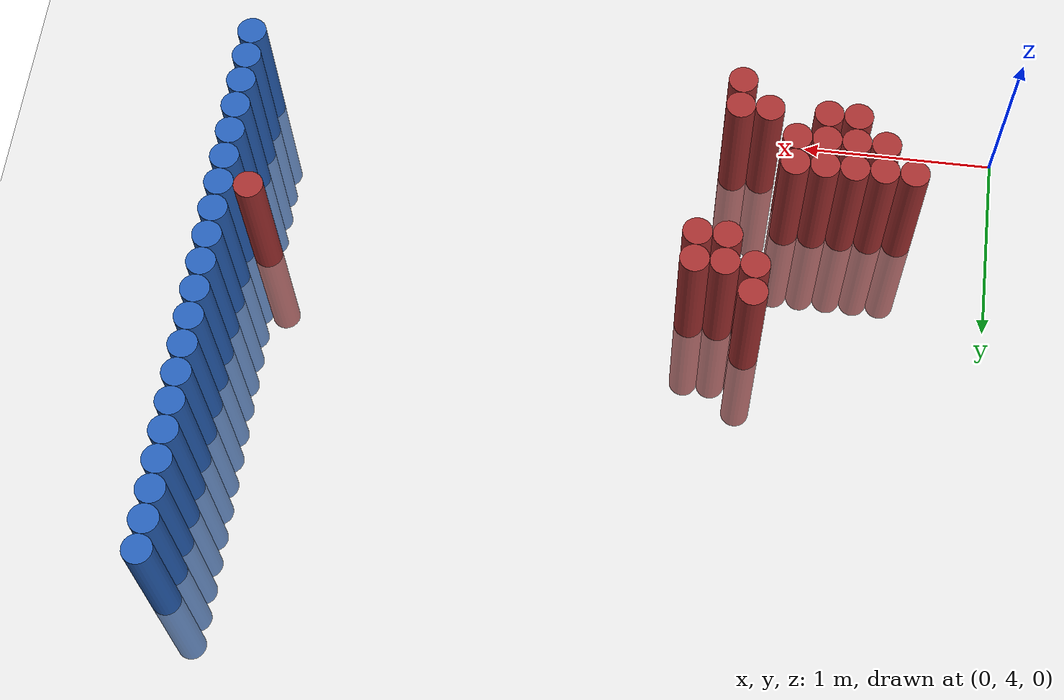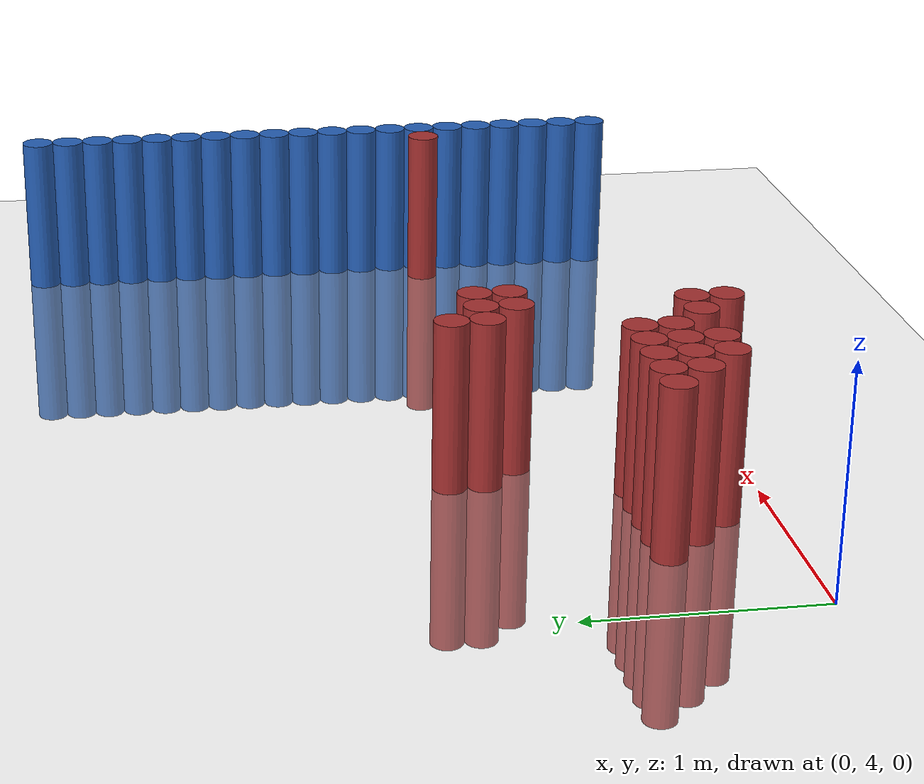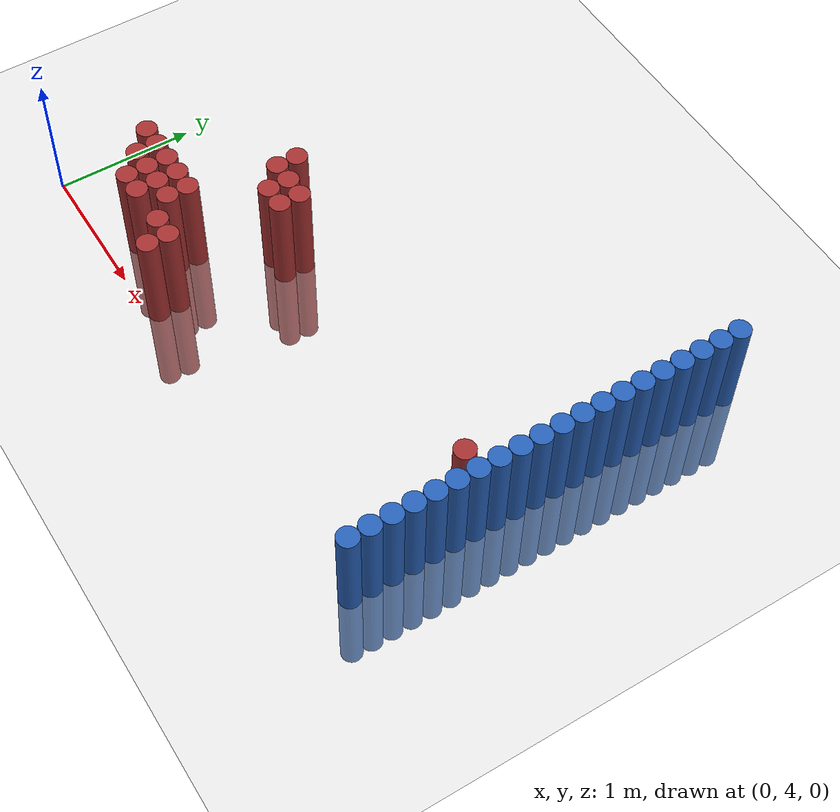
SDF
<sdf version="1.6">
 <world name="default">
  <model name="ground_plane">
   <static>1</static>
   <link name="link">
    <collision name="collision">
     <geometry><plane><normal>0 0 1</normal><size>100 100</size></plane></geometry>
     <surface><friction><ode><mu>100</mu><mu2>50</mu2></ode></friction></surface>
    </collision>
    <visual name="visual">
     <cast_shadows>0</cast_shadows>
     <geometry><plane><normal>0 0 1</normal><size>100 100</size></plane></geometry>
     <material>
      <script><uri>file://media/materials/scripts/gazebo.material</uri><name>Gazebo/Grey</name></script>
     </material>
    </visual>
   </link>
  </model>
  <model name="unit_cylinder_168">
   <static>1</static>
   <pose>3.925000 4.075000 0.000000 0.000000 0.000000 0.000000</pose>
   <link name="link">
    <inertial>
     <mass>1</mass>
     <inertia><ixx>0.145833</ixx><ixy>0</ixy><ixz>0</ixz><iyy>0.145833</iyy><iyz>0</iyz><izz>0.125</izz></inertia>
    </inertial>
    <collision name="collision">
     <geometry><cylinder><radius>0.075000</radius><length>1.5</length></cylinder></geometry>
    </collision>
    <visual name="visual">
     <geometry><cylinder><radius>0.075000</radius><length>1.5</length></cylinder></geometry>
     <material>
      <ambient>0.152000 0.379000 0.720000 1</ambient>
      <diffuse>0.152000 0.379000 0.720000 1</diffuse>
     </material>
     <material>
      <script><name>Gazebo/Grey</name><uri>file://media/materials/scripts/gazebo.material</uri></script>
     </material>
    </visual>
   </link>
  </model>
  <model name="unit_cylinder_170">
   <static>1</static>
   <pose>3.925000 4.225000 0.000000 0.000000 0.000000 0.000000</pose>
   <link name="link">
    <inertial>
     <mass>1</mass>
     <inertia><ixx>0.145833</ixx><ixy>0</ixy><ixz>0</ixz><iyy>0.145833</iyy><iyz>0</iyz><izz>0.125</izz></inertia>
    </inertial>
    <collision name="collision">
     <geometry><cylinder><radius>0.075000</radius><length>1.5</length></cylinder></geometry>
    </collision>
    <visual name="visual">
     <geometry><cylinder><radius>0.075000</radius><length>1.5</length></cylinder></geometry>
     <material>
      <ambient>0.152000 0.379000 0.720000 1</ambient>
      <diffuse>0.152000 0.379000 0.720000 1</diffuse>
     </material>
     <material>
      <script><name>Gazebo/Grey</name><uri>file://media/materials/scripts/gazebo.material</uri></script>
     </material>
    </visual>
   </link>
  </model>
  <model name="unit_cylinder_172">
   <static>1</static>
   <pose>3.925000 4.375000 0.000000 0.000000 0.000000 0.000000</pose>
   <link name="link">
    <inertial>
     <mass>1</mass>
     <inertia><ixx>0.145833</ixx><ixy>0</ixy><ixz>0</ixz><iyy>0.145833</iyy><iyz>0</iyz><izz>0.125</izz></inertia>
    </inertial>
    <collision name="collision">
     <geometry><cylinder><radius>0.075000</radius><length>1.5</length></cylinder></geometry>
    </collision>
    <visual name="visual">
     <geometry><cylinder><radius>0.075000</radius><length>1.5</length></cylinder></geometry>
     <material>
      <ambient>0.152000 0.379000 0.720000 1</ambient>
      <diffuse>0.152000 0.379000 0.720000 1</diffuse>
     </material>
     <material>
      <script><name>Gazebo/Grey</name><uri>file://media/materials/scripts/gazebo.material</uri></script>
     </material>
    </visual>
   </link>
  </model>
  <model name="unit_cylinder_174">
   <static>1</static>
   <pose>3.925000 4.525000 0.000000 0.000000 0.000000 0.000000</pose>
   <link name="link">
    <inertial>
     <mass>1</mass>
     <inertia><ixx>0.145833</ixx><ixy>0</ixy><ixz>0</ixz><iyy>0.145833</iyy><iyz>0</iyz><izz>0.125</izz></inertia>
    </inertial>
    <collision name="collision">
     <geometry><cylinder><radius>0.075000</radius><length>1.5</length></cylinder></geometry>
    </collision>
    <visual name="visual">
     <geometry><cylinder><radius>0.075000</radius><length>1.5</length></cylinder></geometry>
     <material>
      <ambient>0.152000 0.379000 0.720000 1</ambient>
      <diffuse>0.152000 0.379000 0.720000 1</diffuse>
     </material>
     <material>
      <script><name>Gazebo/Grey</name><uri>file://media/materials/scripts/gazebo.material</uri></script>
     </material>
    </visual>
   </link>
  </model>
  <model name="unit_cylinder_176">
   <static>1</static>
   <pose>3.925000 4.675000 0.000000 0.000000 0.000000 0.000000</pose>
   <link name="link">
    <inertial>
     <mass>1</mass>
     <inertia><ixx>0.145833</ixx><ixy>0</ixy><ixz>0</ixz><iyy>0.145833</iyy><iyz>0</iyz><izz>0.125</izz></inertia>
    </inertial>
    <collision name="collision">
     <geometry><cylinder><radius>0.075000</radius><length>1.5</length></cylinder></geometry>
    </collision>
    <visual name="visual">
     <geometry><cylinder><radius>0.075000</radius><length>1.5</length></cylinder></geometry>
     <material>
      <ambient>0.152000 0.379000 0.720000 1</ambient>
      <diffuse>0.152000 0.379000 0.720000 1</diffuse>
     </material>
     <material>
      <script><name>Gazebo/Grey</name><uri>file://media/materials/scripts/gazebo.material</uri></script>
     </material>
    </visual>
   </link>
  </model>
  <model name="unit_cylinder_178">
   <static>1</static>
   <pose>3.925000 4.825000 0.000000 0.000000 0.000000 0.000000</pose>
   <link name="link">
    <inertial>
     <mass>1</mass>
     <inertia><ixx>0.145833</ixx><ixy>0</ixy><ixz>0</ixz><iyy>0.145833</iyy><iyz>0</iyz><izz>0.125</izz></inertia>
    </inertial>
    <collision name="collision">
     <geometry><cylinder><radius>0.075000</radius><length>1.5</length></cylinder></geometry>
    </collision>
    <visual name="visual">
     <geometry><cylinder><radius>0.075000</radius><length>1.5</length></cylinder></geometry>
     <material>
      <ambient>0.152000 0.379000 0.720000 1</ambient>
      <diffuse>0.152000 0.379000 0.720000 1</diffuse>
     </material>
     <material>
      <script><name>Gazebo/Grey</name><uri>file://media/materials/scripts/gazebo.material</uri></script>
     </material>
    </visual>
   </link>
  </model>
  <model name="unit_cylinder_180">
   <static>1</static>
   <pose>3.925000 4.975000 0.000000 0.000000 0.000000 0.000000</pose>
   <link name="link">
    <inertial>
     <mass>1</mass>
     <inertia><ixx>0.145833</ixx><ixy>0</ixy><ixz>0</ixz><iyy>0.145833</iyy><iyz>0</iyz><izz>0.125</izz></inertia>
    </inertial>
    <collision name="collision">
     <geometry><cylinder><radius>0.075000</radius><length>1.5</length></cylinder></geometry>
    </collision>
    <visual name="visual">
     <geometry><cylinder><radius>0.075000</radius><length>1.5</length></cylinder></geometry>
     <material>
      <ambient>0.152000 0.379000 0.720000 1</ambient>
      <diffuse>0.152000 0.379000 0.720000 1</diffuse>
     </material>
     <material>
      <script><name>Gazebo/Grey</name><uri>file://media/materials/scripts/gazebo.material</uri></script>
     </material>
    </visual>
   </link>
  </model>
  <model name="unit_cylinder_182">
   <static>1</static>
   <pose>3.925000 5.125000 0.000000 0.000000 0.000000 0.000000</pose>
   <link name="link">
    <inertial>
     <mass>1</mass>
     <inertia><ixx>0.145833</ixx><ixy>0</ixy><ixz>0</ixz><iyy>0.145833</iyy><iyz>0</iyz><izz>0.125</izz></inertia>
    </inertial>
    <collision name="collision">
     <geometry><cylinder><radius>0.075000</radius><length>1.5</length></cylinder></geometry>
    </collision>
    <visual name="visual">
     <geometry><cylinder><radius>0.075000</radius><length>1.5</length></cylinder></geometry>
     <material>
      <ambient>0.152000 0.379000 0.720000 1</ambient>
      <diffuse>0.152000 0.379000 0.720000 1</diffuse>
     </material>
     <material>
      <script><name>Gazebo/Grey</name><uri>file://media/materials/scripts/gazebo.material</uri></script>
     </material>
    </visual>
   </link>
  </model>
  <model name="unit_cylinder_184">
   <static>1</static>
   <pose>3.925000 5.275000 0.000000 0.000000 0.000000 0.000000</pose>
   <link name="link">
    <inertial>
     <mass>1</mass>
     <inertia><ixx>0.145833</ixx><ixy>0</ixy><ixz>0</ixz><iyy>0.145833</iyy><iyz>0</iyz><izz>0.125</izz></inertia>
    </inertial>
    <collision name="collision">
     <geometry><cylinder><radius>0.075000</radius><length>1.5</length></cylinder></geometry>
    </collision>
    <visual name="visual">
     <geometry><cylinder><radius>0.075000</radius><length>1.5</length></cylinder></geometry>
     <material>
      <ambient>0.152000 0.379000 0.720000 1</ambient>
      <diffuse>0.152000 0.379000 0.720000 1</diffuse>
     </material>
     <material>
      <script><name>Gazebo/Grey</name><uri>file://media/materials/scripts/gazebo.material</uri></script>
     </material>
    </visual>
   </link>
  </model>
  <model name="unit_cylinder_186">
   <static>1</static>
   <pose>3.925000 5.425000 0.000000 0.000000 0.000000 0.000000</pose>
   <link name="link">
    <inertial>
     <mass>1</mass>
     <inertia><ixx>0.145833</ixx><ixy>0</ixy><ixz>0</ixz><iyy>0.145833</iyy><iyz>0</iyz><izz>0.125</izz></inertia>
    </inertial>
    <collision name="collision">
     <geometry><cylinder><radius>0.075000</radius><length>1.5</length></cylinder></geometry>
    </collision>
    <visual name="visual">
     <geometry><cylinder><radius>0.075000</radius><length>1.5</length></cylinder></geometry>
     <material>
      <ambient>0.152000 0.379000 0.720000 1</ambient>
      <diffuse>0.152000 0.379000 0.720000 1</diffuse>
     </material>
     <material>
      <script><name>Gazebo/Grey</name><uri>file://media/materials/scripts/gazebo.material</uri></script>
     </material>
    </visual>
   </link>
  </model>
  <model name="unit_cylinder_188">
   <static>1</static>
   <pose>3.925000 5.575000 0.000000 0.000000 0.000000 0.000000</pose>
   <link name="link">
    <inertial>
     <mass>1</mass>
     <inertia><ixx>0.145833</ixx><ixy>0</ixy><ixz>0</ixz><iyy>0.145833</iyy><iyz>0</iyz><izz>0.125</izz></inertia>
    </inertial>
    <collision name="collision">
     <geometry><cylinder><radius>0.075000</radius><length>1.5</length></cylinder></geometry>
    </collision>
    <visual name="visual">
     <geometry><cylinder><radius>0.075000</radius><length>1.5</length></cylinder></geometry>
     <material>
      <ambient>0.152000 0.379000 0.720000 1</ambient>
      <diffuse>0.152000 0.379000 0.720000 1</diffuse>
     </material>
     <material>
      <script><name>Gazebo/Grey</name><uri>file://media/materials/scripts/gazebo.material</uri></script>
     </material>
    </visual>
   </link>
  </model>
  <model name="unit_cylinder_190">
   <static>1</static>
   <pose>3.925000 5.725000 0.000000 0.000000 0.000000 0.000000</pose>
   <link name="link">
    <inertial>
     <mass>1</mass>
     <inertia><ixx>0.145833</ixx><ixy>0</ixy><ixz>0</ixz><iyy>0.145833</iyy><iyz>0</iyz><izz>0.125</izz></inertia>
    </inertial>
    <collision name="collision">
     <geometry><cylinder><radius>0.075000</radius><length>1.5</length></cylinder></geometry>
    </collision>
    <visual name="visual">
     <geometry><cylinder><radius>0.075000</radius><length>1.5</length></cylinder></geometry>
     <material>
      <ambient>0.152000 0.379000 0.720000 1</ambient>
      <diffuse>0.152000 0.379000 0.720000 1</diffuse>
     </material>
     <material>
      <script><name>Gazebo/Grey</name><uri>file://media/materials/scripts/gazebo.material</uri></script>
     </material>
    </visual>
   </link>
  </model>
  <model name="unit_cylinder_192">
   <static>1</static>
   <pose>3.925000 5.875000 0.000000 0.000000 0.000000 0.000000</pose>
   <link name="link">
    <inertial>
     <mass>1</mass>
     <inertia><ixx>0.145833</ixx><ixy>0</ixy><ixz>0</ixz><iyy>0.145833</iyy><iyz>0</iyz><izz>0.125</izz></inertia>
    </inertial>
    <collision name="collision">
     <geometry><cylinder><radius>0.075000</radius><length>1.5</length></cylinder></geometry>
    </collision>
    <visual name="visual">
     <geometry><cylinder><radius>0.075000</radius><length>1.5</length></cylinder></geometry>
     <material>
      <ambient>0.152000 0.379000 0.720000 1</ambient>
      <diffuse>0.152000 0.379000 0.720000 1</diffuse>
     </material>
     <material>
      <script><name>Gazebo/Grey</name><uri>file://media/materials/scripts/gazebo.material</uri></script>
     </material>
    </visual>
   </link>
  </model>
  <model name="unit_cylinder_194">
   <static>1</static>
   <pose>3.925000 6.025000 0.000000 0.000000 0.000000 0.000000</pose>
   <link name="link">
    <inertial>
     <mass>1</mass>
     <inertia><ixx>0.145833</ixx><ixy>0</ixy><ixz>0</ixz><iyy>0.145833</iyy><iyz>0</iyz><izz>0.125</izz></inertia>
    </inertial>
    <collision name="collision">
     <geometry><cylinder><radius>0.075000</radius><length>1.5</length></cylinder></geometry>
    </collision>
    <visual name="visual">
     <geometry><cylinder><radius>0.075000</radius><length>1.5</length></cylinder></geometry>
     <material>
      <ambient>0.152000 0.379000 0.720000 1</ambient>
      <diffuse>0.152000 0.379000 0.720000 1</diffuse>
     </material>
     <material>
      <script><name>Gazebo/Grey</name><uri>file://media/materials/scripts/gazebo.material</uri></script>
     </material>
    </visual>
   </link>
  </model>
  <model name="unit_cylinder_196">
   <static>1</static>
   <pose>3.925000 6.175000 0.000000 0.000000 0.000000 0.000000</pose>
   <link name="link">
    <inertial>
     <mass>1</mass>
     <inertia><ixx>0.145833</ixx><ixy>0</ixy><ixz>0</ixz><iyy>0.145833</iyy><iyz>0</iyz><izz>0.125</izz></inertia>
    </inertial>
    <collision name="collision">
     <geometry><cylinder><radius>0.075000</radius><length>1.5</length></cylinder></geometry>
    </collision>
    <visual name="visual">
     <geometry><cylinder><radius>0.075000</radius><length>1.5</length></cylinder></geometry>
     <material>
      <ambient>0.152000 0.379000 0.720000 1</ambient>
      <diffuse>0.152000 0.379000 0.720000 1</diffuse>
     </material>
     <material>
      <script><name>Gazebo/Grey</name><uri>file://media/materials/scripts/gazebo.material</uri></script>
     </material>
    </visual>
   </link>
  </model>
  <model name="unit_cylinder_198">
   <static>1</static>
   <pose>3.925000 6.325000 0.000000 0.000000 0.000000 0.000000</pose>
   <link name="link">
    <inertial>
     <mass>1</mass>
     <inertia><ixx>0.145833</ixx><ixy>0</ixy><ixz>0</ixz><iyy>0.145833</iyy><iyz>0</iyz><izz>0.125</izz></inertia>
    </inertial>
    <collision name="collision">
     <geometry><cylinder><radius>0.075000</radius><length>1.5</length></cylinder></geometry>
    </collision>
    <visual name="visual">
     <geometry><cylinder><radius>0.075000</radius><length>1.5</length></cylinder></geometry>
     <material>
      <ambient>0.152000 0.379000 0.720000 1</ambient>
      <diffuse>0.152000 0.379000 0.720000 1</diffuse>
     </material>
     <material>
      <script><name>Gazebo/Grey</name><uri>file://media/materials/scripts/gazebo.material</uri></script>
     </material>
    </visual>
   </link>
  </model>
  <model name="unit_cylinder_200">
   <static>1</static>
   <pose>3.925000 6.475000 0.000000 0.000000 0.000000 0.000000</pose>
   <link name="link">
    <inertial>
     <mass>1</mass>
     <inertia><ixx>0.145833</ixx><ixy>0</ixy><ixz>0</ixz><iyy>0.145833</iyy><iyz>0</iyz><izz>0.125</izz></inertia>
    </inertial>
    <collision name="collision">
     <geometry><cylinder><radius>0.075000</radius><length>1.5</length></cylinder></geometry>
    </collision>
    <visual name="visual">
     <geometry><cylinder><radius>0.075000</radius><length>1.5</length></cylinder></geometry>
     <material>
      <ambient>0.152000 0.379000 0.720000 1</ambient>
      <diffuse>0.152000 0.379000 0.720000 1</diffuse>
     </material>
     <material>
      <script><name>Gazebo/Grey</name><uri>file://media/materials/scripts/gazebo.material</uri></script>
     </material>
    </visual>
   </link>
  </model>
  <model name="unit_cylinder_202">
   <static>1</static>
   <pose>3.925000 6.625000 0.000000 0.000000 0.000000 0.000000</pose>
   <link name="link">
    <inertial>
     <mass>1</mass>
     <inertia><ixx>0.145833</ixx><ixy>0</ixy><ixz>0</ixz><iyy>0.145833</iyy><iyz>0</iyz><izz>0.125</izz></inertia>
    </inertial>
    <collision name="collision">
     <geometry><cylinder><radius>0.075000</radius><length>1.5</length></cylinder></geometry>
    </collision>
    <visual name="visual">
     <geometry><cylinder><radius>0.075000</radius><length>1.5</length></cylinder></geometry>
     <material>
      <ambient>0.152000 0.379000 0.720000 1</ambient>
      <diffuse>0.152000 0.379000 0.720000 1</diffuse>
     </material>
     <material>
      <script><name>Gazebo/Grey</name><uri>file://media/materials/scripts/gazebo.material</uri></script>
     </material>
    </visual>
   </link>
  </model>
  <model name="unit_cylinder_204">
   <static>1</static>
   <pose>3.925000 6.775000 0.000000 0.000000 0.000000 0.000000</pose>
   <link name="link">
    <inertial>
     <mass>1</mass>
     <inertia><ixx>0.145833</ixx><ixy>0</ixy><ixz>0</ixz><iyy>0.145833</iyy><iyz>0</iyz><izz>0.125</izz></inertia>
    </inertial>
    <collision name="collision">
     <geometry><cylinder><radius>0.075000</radius><length>1.5</length></cylinder></geometry>
    </collision>
    <visual name="visual">
     <geometry><cylinder><radius>0.075000</radius><length>1.5</length></cylinder></geometry>
     <material>
      <ambient>0.152000 0.379000 0.720000 1</ambient>
      <diffuse>0.152000 0.379000 0.720000 1</diffuse>
     </material>
     <material>
      <script><name>Gazebo/Grey</name><uri>file://media/materials/scripts/gazebo.material</uri></script>
     </material>
    </visual>
   </link>
  </model>
  <model name="unit_cylinder_206">
   <static>1</static>
   <pose>3.925000 6.925000 0.000000 0.000000 0.000000 0.000000</pose>
   <link name="link">
    <inertial>
     <mass>1</mass>
     <inertia><ixx>0.145833</ixx><ixy>0</ixy><ixz>0</ixz><iyy>0.145833</iyy><iyz>0</iyz><izz>0.125</izz></inertia>
    </inertial>
    <collision name="collision">
     <geometry><cylinder><radius>0.075000</radius><length>1.5</length></cylinder></geometry>
    </collision>
    <visual name="visual">
     <geometry><cylinder><radius>0.075000</radius><length>1.5</length></cylinder></geometry>
     <material>
      <ambient>0.152000 0.379000 0.720000 1</ambient>
      <diffuse>0.152000 0.379000 0.720000 1</diffuse>
     </material>
     <material>
      <script><name>Gazebo/Grey</name><uri>file://media/materials/scripts/gazebo.material</uri></script>
     </material>
    </visual>
   </link>
  </model>
  <model name="unit_cylinder_396">
   <static>1</static>
   <pose>0.475000 4.525000 0.000000 0.000000 0.000000 0.000000</pose>
   <link name="link">
    <inertial>
     <mass>1</mass>
     <inertia><ixx>0.145833</ixx><ixy>0</ixy><ixz>0</ixz><iyy>0.145833</iyy><iyz>0</iyz><izz>0.125</izz></inertia>
    </inertial>
    <collision name="collision">
     <geometry><cylinder><radius>0.075000</radius><length>1.5</length></cylinder></geometry>
    </collision>
    <visual name="visual">
     <geometry><cylinder><radius>0.075000</radius><length>1.5</length></cylinder></geometry>
     <material>
      <ambient>0.648000 0.192000 0.192000 1</ambient>
      <diffuse>0.648000 0.192000 0.192000 1</diffuse>
     </material>
     <material>
      <script><name>Gazebo/Grey</name><uri>file://media/materials/scripts/gazebo.material</uri></script>
     </material>
    </visual>
   </link>
  </model>
  <model name="unit_cylinder_397">
   <static>1</static>
   <pose>0.625000 4.375000 0.000000 0.000000 0.000000 0.000000</pose>
   <link name="link">
    <inertial>
     <mass>1</mass>
     <inertia><ixx>0.145833</ixx><ixy>0</ixy><ixz>0</ixz><iyy>0.145833</iyy><iyz>0</iyz><izz>0.125</izz></inertia>
    </inertial>
    <collision name="collision">
     <geometry><cylinder><radius>0.075000</radius><length>1.5</length></cylinder></geometry>
    </collision>
    <visual name="visual">
     <geometry><cylinder><radius>0.075000</radius><length>1.5</length></cylinder></geometry>
     <material>
      <ambient>0.648000 0.192000 0.192000 1</ambient>
      <diffuse>0.648000 0.192000 0.192000 1</diffuse>
     </material>
     <material>
      <script><name>Gazebo/Grey</name><uri>file://media/materials/scripts/gazebo.material</uri></script>
     </material>
    </visual>
   </link>
  </model>
  <model name="unit_cylinder_398">
   <static>1</static>
   <pose>0.625000 4.525000 0.000000 0.000000 0.000000 0.000000</pose>
   <link name="link">
    <inertial>
     <mass>1</mass>
     <inertia><ixx>0.145833</ixx><ixy>0</ixy><ixz>0</ixz><iyy>0.145833</iyy><iyz>0</iyz><izz>0.125</izz></inertia>
    </inertial>
    <collision name="collision">
     <geometry><cylinder><radius>0.075000</radius><length>1.5</length></cylinder></geometry>
    </collision>
    <visual name="visual">
     <geometry><cylinder><radius>0.075000</radius><length>1.5</length></cylinder></geometry>
     <material>
      <ambient>0.648000 0.192000 0.192000 1</ambient>
      <diffuse>0.648000 0.192000 0.192000 1</diffuse>
     </material>
     <material>
      <script><name>Gazebo/Grey</name><uri>file://media/materials/scripts/gazebo.material</uri></script>
     </material>
    </visual>
   </link>
  </model>
  <model name="unit_cylinder_399">
   <static>1</static>
   <pose>0.775000 4.225000 0.000000 0.000000 0.000000 0.000000</pose>
   <link name="link">
    <inertial>
     <mass>1</mass>
     <inertia><ixx>0.145833</ixx><ixy>0</ixy><ixz>0</ixz><iyy>0.145833</iyy><iyz>0</iyz><izz>0.125</izz></inertia>
    </inertial>
    <collision name="collision">
     <geometry><cylinder><radius>0.075000</radius><length>1.5</length></cylinder></geometry>
    </collision>
    <visual name="visual">
     <geometry><cylinder><radius>0.075000</radius><length>1.5</length></cylinder></geometry>
     <material>
      <ambient>0.648000 0.192000 0.192000 1</ambient>
      <diffuse>0.648000 0.192000 0.192000 1</diffuse>
     </material>
     <material>
      <script><name>Gazebo/Grey</name><uri>file://media/materials/scripts/gazebo.material</uri></script>
     </material>
    </visual>
   </link>
  </model>
  <model name="unit_cylinder_400">
   <static>1</static>
   <pose>0.775000 4.375000 0.000000 0.000000 0.000000 0.000000</pose>
   <link name="link">
    <inertial>
     <mass>1</mass>
     <inertia><ixx>0.145833</ixx><ixy>0</ixy><ixz>0</ixz><iyy>0.145833</iyy><iyz>0</iyz><izz>0.125</izz></inertia>
    </inertial>
    <collision name="collision">
     <geometry><cylinder><radius>0.075000</radius><length>1.5</length></cylinder></geometry>
    </collision>
    <visual name="visual">
     <geometry><cylinder><radius>0.075000</radius><length>1.5</length></cylinder></geometry>
     <material>
      <ambient>0.648000 0.192000 0.192000 1</ambient>
      <diffuse>0.648000 0.192000 0.192000 1</diffuse>
     </material>
     <material>
      <script><name>Gazebo/Grey</name><uri>file://media/materials/scripts/gazebo.material</uri></script>
     </material>
    </visual>
   </link>
  </model>
  <model name="unit_cylinder_401">
   <static>1</static>
   <pose>0.775000 4.525000 0.000000 0.000000 0.000000 0.000000</pose>
   <link name="link">
    <inertial>
     <mass>1</mass>
     <inertia><ixx>0.145833</ixx><ixy>0</ixy><ixz>0</ixz><iyy>0.145833</iyy><iyz>0</iyz><izz>0.125</izz></inertia>
    </inertial>
    <collision name="collision">
     <geometry><cylinder><radius>0.075000</radius><length>1.5</length></cylinder></geometry>
    </collision>
    <visual name="visual">
     <geometry><cylinder><radius>0.075000</radius><length>1.5</length></cylinder></geometry>
     <material>
      <ambient>0.648000 0.192000 0.192000 1</ambient>
      <diffuse>0.648000 0.192000 0.192000 1</diffuse>
     </material>
     <material>
      <script><name>Gazebo/Grey</name><uri>file://media/materials/scripts/gazebo.material</uri></script>
     </material>
    </visual>
   </link>
  </model>
  <model name="unit_cylinder_403">
   <static>1</static>
   <pose>0.925000 4.225000 0.000000 0.000000 0.000000 0.000000</pose>
   <link name="link">
    <inertial>
     <mass>1</mass>
     <inertia><ixx>0.145833</ixx><ixy>0</ixy><ixz>0</ixz><iyy>0.145833</iyy><iyz>0</iyz><izz>0.125</izz></inertia>
    </inertial>
    <collision name="collision">
     <geometry><cylinder><radius>0.075000</radius><length>1.5</length></cylinder></geometry>
    </collision>
    <visual name="visual">
     <geometry><cylinder><radius>0.075000</radius><length>1.5</length></cylinder></geometry>
     <material>
      <ambient>0.648000 0.192000 0.192000 1</ambient>
      <diffuse>0.648000 0.192000 0.192000 1</diffuse>
     </material>
     <material>
      <script><name>Gazebo/Grey</name><uri>file://media/materials/scripts/gazebo.material</uri></script>
     </material>
    </visual>
   </link>
  </model>
  <model name="unit_cylinder_404">
   <static>1</static>
   <pose>0.925000 4.375000 0.000000 0.000000 0.000000 0.000000</pose>
   <link name="link">
    <inertial>
     <mass>1</mass>
     <inertia><ixx>0.145833</ixx><ixy>0</ixy><ixz>0</ixz><iyy>0.145833</iyy><iyz>0</iyz><izz>0.125</izz></inertia>
    </inertial>
    <collision name="collision">
     <geometry><cylinder><radius>0.075000</radius><length>1.5</length></cylinder></geometry>
    </collision>
    <visual name="visual">
     <geometry><cylinder><radius>0.075000</radius><length>1.5</length></cylinder></geometry>
     <material>
      <ambient>0.648000 0.192000 0.192000 1</ambient>
      <diffuse>0.648000 0.192000 0.192000 1</diffuse>
     </material>
     <material>
      <script><name>Gazebo/Grey</name><uri>file://media/materials/scripts/gazebo.material</uri></script>
     </material>
    </visual>
   </link>
  </model>
  <model name="unit_cylinder_405">
   <static>1</static>
   <pose>0.925000 4.525000 0.000000 0.000000 0.000000 0.000000</pose>
   <link name="link">
    <inertial>
     <mass>1</mass>
     <inertia><ixx>0.145833</ixx><ixy>0</ixy><ixz>0</ixz><iyy>0.145833</iyy><iyz>0</iyz><izz>0.125</izz></inertia>
    </inertial>
    <collision name="collision">
     <geometry><cylinder><radius>0.075000</radius><length>1.5</length></cylinder></geometry>
    </collision>
    <visual name="visual">
     <geometry><cylinder><radius>0.075000</radius><length>1.5</length></cylinder></geometry>
     <material>
      <ambient>0.648000 0.192000 0.192000 1</ambient>
      <diffuse>0.648000 0.192000 0.192000 1</diffuse>
     </material>
     <material>
      <script><name>Gazebo/Grey</name><uri>file://media/materials/scripts/gazebo.material</uri></script>
     </material>
    </visual>
   </link>
  </model>
  <model name="unit_cylinder_409">
   <static>1</static>
   <pose>1.075000 4.375000 0.000000 0.000000 0.000000 0.000000</pose>
   <link name="link">
    <inertial>
     <mass>1</mass>
     <inertia><ixx>0.145833</ixx><ixy>0</ixy><ixz>0</ixz><iyy>0.145833</iyy><iyz>0</iyz><izz>0.125</izz></inertia>
    </inertial>
    <collision name="collision">
     <geometry><cylinder><radius>0.075000</radius><length>1.5</length></cylinder></geometry>
    </collision>
    <visual name="visual">
     <geometry><cylinder><radius>0.075000</radius><length>1.5</length></cylinder></geometry>
     <material>
      <ambient>0.648000 0.192000 0.192000 1</ambient>
      <diffuse>0.648000 0.192000 0.192000 1</diffuse>
     </material>
     <material>
      <script><name>Gazebo/Grey</name><uri>file://media/materials/scripts/gazebo.material</uri></script>
     </material>
    </visual>
   </link>
  </model>
  <model name="unit_cylinder_410">
   <static>1</static>
   <pose>1.075000 4.525000 0.000000 0.000000 0.000000 0.000000</pose>
   <link name="link">
    <inertial>
     <mass>1</mass>
     <inertia><ixx>0.145833</ixx><ixy>0</ixy><ixz>0</ixz><iyy>0.145833</iyy><iyz>0</iyz><izz>0.125</izz></inertia>
    </inertial>
    <collision name="collision">
     <geometry><cylinder><radius>0.075000</radius><length>1.5</length></cylinder></geometry>
    </collision>
    <visual name="visual">
     <geometry><cylinder><radius>0.075000</radius><length>1.5</length></cylinder></geometry>
     <material>
      <ambient>0.648000 0.192000 0.192000 1</ambient>
      <diffuse>0.648000 0.192000 0.192000 1</diffuse>
     </material>
     <material>
      <script><name>Gazebo/Grey</name><uri>file://media/materials/scripts/gazebo.material</uri></script>
     </material>
    </visual>
   </link>
  </model>
  <model name="unit_cylinder_413">
   <static>1</static>
   <pose>1.225000 4.225000 0.000000 0.000000 0.000000 0.000000</pose>
   <link name="link">
    <inertial>
     <mass>1</mass>
     <inertia><ixx>0.145833</ixx><ixy>0</ixy><ixz>0</ixz><iyy>0.145833</iyy><iyz>0</iyz><izz>0.125</izz></inertia>
    </inertial>
    <collision name="collision">
     <geometry><cylinder><radius>0.075000</radius><length>1.5</length></cylinder></geometry>
    </collision>
    <visual name="visual">
     <geometry><cylinder><radius>0.075000</radius><length>1.5</length></cylinder></geometry>
     <material>
      <ambient>0.648000 0.192000 0.192000 1</ambient>
      <diffuse>0.648000 0.192000 0.192000 1</diffuse>
     </material>
     <material>
      <script><name>Gazebo/Grey</name><uri>file://media/materials/scripts/gazebo.material</uri></script>
     </material>
    </visual>
   </link>
  </model>
  <model name="unit_cylinder_414">
   <static>1</static>
   <pose>1.225000 5.125000 0.000000 0.000000 0.000000 0.000000</pose>
   <link name="link">
    <inertial>
     <mass>1</mass>
     <inertia><ixx>0.145833</ixx><ixy>0</ixy><ixz>0</ixz><iyy>0.145833</iyy><iyz>0</iyz><izz>0.125</izz></inertia>
    </inertial>
    <collision name="collision">
     <geometry><cylinder><radius>0.075000</radius><length>1.5</length></cylinder></geometry>
    </collision>
    <visual name="visual">
     <geometry><cylinder><radius>0.075000</radius><length>1.5</length></cylinder></geometry>
     <material>
      <ambient>0.648000 0.192000 0.192000 1</ambient>
      <diffuse>0.648000 0.192000 0.192000 1</diffuse>
     </material>
     <material>
      <script><name>Gazebo/Grey</name><uri>file://media/materials/scripts/gazebo.material</uri></script>
     </material>
    </visual>
   </link>
  </model>
  <model name="unit_cylinder_415">
   <static>1</static>
   <pose>1.225000 5.275000 0.000000 0.000000 0.000000 0.000000</pose>
   <link name="link">
    <inertial>
     <mass>1</mass>
     <inertia><ixx>0.145833</ixx><ixy>0</ixy><ixz>0</ixz><iyy>0.145833</iyy><iyz>0</iyz><izz>0.125</izz></inertia>
    </inertial>
    <collision name="collision">
     <geometry><cylinder><radius>0.075000</radius><length>1.5</length></cylinder></geometry>
    </collision>
    <visual name="visual">
     <geometry><cylinder><radius>0.075000</radius><length>1.5</length></cylinder></geometry>
     <material>
      <ambient>0.648000 0.192000 0.192000 1</ambient>
      <diffuse>0.648000 0.192000 0.192000 1</diffuse>
     </material>
     <material>
      <script><name>Gazebo/Grey</name><uri>file://media/materials/scripts/gazebo.material</uri></script>
     </material>
    </visual>
   </link>
  </model>
  <model name="unit_cylinder_418">
   <static>1</static>
   <pose>1.375000 4.075000 0.000000 0.000000 0.000000 0.000000</pose>
   <link name="link">
    <inertial>
     <mass>1</mass>
     <inertia><ixx>0.145833</ixx><ixy>0</ixy><ixz>0</ixz><iyy>0.145833</iyy><iyz>0</iyz><izz>0.125</izz></inertia>
    </inertial>
    <collision name="collision">
     <geometry><cylinder><radius>0.075000</radius><length>1.5</length></cylinder></geometry>
    </collision>
    <visual name="visual">
     <geometry><cylinder><radius>0.075000</radius><length>1.5</length></cylinder></geometry>
     <material>
      <ambient>0.648000 0.192000 0.192000 1</ambient>
      <diffuse>0.648000 0.192000 0.192000 1</diffuse>
     </material>
     <material>
      <script><name>Gazebo/Grey</name><uri>file://media/materials/scripts/gazebo.material</uri></script>
     </material>
    </visual>
   </link>
  </model>
  <model name="unit_cylinder_419">
   <static>1</static>
   <pose>1.375000 4.225000 0.000000 0.000000 0.000000 0.000000</pose>
   <link name="link">
    <inertial>
     <mass>1</mass>
     <inertia><ixx>0.145833</ixx><ixy>0</ixy><ixz>0</ixz><iyy>0.145833</iyy><iyz>0</iyz><izz>0.125</izz></inertia>
    </inertial>
    <collision name="collision">
     <geometry><cylinder><radius>0.075000</radius><length>1.5</length></cylinder></geometry>
    </collision>
    <visual name="visual">
     <geometry><cylinder><radius>0.075000</radius><length>1.5</length></cylinder></geometry>
     <material>
      <ambient>0.648000 0.192000 0.192000 1</ambient>
      <diffuse>0.648000 0.192000 0.192000 1</diffuse>
     </material>
     <material>
      <script><name>Gazebo/Grey</name><uri>file://media/materials/scripts/gazebo.material</uri></script>
     </material>
    </visual>
   </link>
  </model>
  <model name="unit_cylinder_420">
   <static>1</static>
   <pose>1.375000 4.975000 0.000000 0.000000 0.000000 0.000000</pose>
   <link name="link">
    <inertial>
     <mass>1</mass>
     <inertia><ixx>0.145833</ixx><ixy>0</ixy><ixz>0</ixz><iyy>0.145833</iyy><iyz>0</iyz><izz>0.125</izz></inertia>
    </inertial>
    <collision name="collision">
     <geometry><cylinder><radius>0.075000</radius><length>1.5</length></cylinder></geometry>
    </collision>
    <visual name="visual">
     <geometry><cylinder><radius>0.075000</radius><length>1.5</length></cylinder></geometry>
     <material>
      <ambient>0.648000 0.192000 0.192000 1</ambient>
      <diffuse>0.648000 0.192000 0.192000 1</diffuse>
     </material>
     <material>
      <script><name>Gazebo/Grey</name><uri>file://media/materials/scripts/gazebo.material</uri></script>
     </material>
    </visual>
   </link>
  </model>
  <model name="unit_cylinder_421">
   <static>1</static>
   <pose>1.375000 5.125000 0.000000 0.000000 0.000000 0.000000</pose>
   <link name="link">
    <inertial>
     <mass>1</mass>
     <inertia><ixx>0.145833</ixx><ixy>0</ixy><ixz>0</ixz><iyy>0.145833</iyy><iyz>0</iyz><izz>0.125</izz></inertia>
    </inertial>
    <collision name="collision">
     <geometry><cylinder><radius>0.075000</radius><length>1.5</length></cylinder></geometry>
    </collision>
    <visual name="visual">
     <geometry><cylinder><radius>0.075000</radius><length>1.5</length></cylinder></geometry>
     <material>
      <ambient>0.648000 0.192000 0.192000 1</ambient>
      <diffuse>0.648000 0.192000 0.192000 1</diffuse>
     </material>
     <material>
      <script><name>Gazebo/Grey</name><uri>file://media/materials/scripts/gazebo.material</uri></script>
     </material>
    </visual>
   </link>
  </model>
  <model name="unit_cylinder_423">
   <static>1</static>
   <pose>1.525000 4.975000 0.000000 0.000000 0.000000 0.000000</pose>
   <link name="link">
    <inertial>
     <mass>1</mass>
     <inertia><ixx>0.145833</ixx><ixy>0</ixy><ixz>0</ixz><iyy>0.145833</iyy><iyz>0</iyz><izz>0.125</izz></inertia>
    </inertial>
    <collision name="collision">
     <geometry><cylinder><radius>0.075000</radius><length>1.5</length></cylinder></geometry>
    </collision>
    <visual name="visual">
     <geometry><cylinder><radius>0.075000</radius><length>1.5</length></cylinder></geometry>
     <material>
      <ambient>0.648000 0.192000 0.192000 1</ambient>
      <diffuse>0.648000 0.192000 0.192000 1</diffuse>
     </material>
     <material>
      <script><name>Gazebo/Grey</name><uri>file://media/materials/scripts/gazebo.material</uri></script>
     </material>
    </visual>
   </link>
  </model>
  <model name="unit_cylinder_424">
   <static>1</static>
   <pose>1.525000 5.125000 0.000000 0.000000 0.000000 0.000000</pose>
   <link name="link">
    <inertial>
     <mass>1</mass>
     <inertia><ixx>0.145833</ixx><ixy>0</ixy><ixz>0</ixz><iyy>0.145833</iyy><iyz>0</iyz><izz>0.125</izz></inertia>
    </inertial>
    <collision name="collision">
     <geometry><cylinder><radius>0.075000</radius><length>1.5</length></cylinder></geometry>
    </collision>
    <visual name="visual">
     <geometry><cylinder><radius>0.075000</radius><length>1.5</length></cylinder></geometry>
     <material>
      <ambient>0.648000 0.192000 0.192000 1</ambient>
      <diffuse>0.648000 0.192000 0.192000 1</diffuse>
     </material>
     <material>
      <script><name>Gazebo/Grey</name><uri>file://media/materials/scripts/gazebo.material</uri></script>
     </material>
    </visual>
   </link>
  </model>
  <model name="unit_cylinder_504">
   <static>1</static>
   <pose>3.775000 4.975000 0.000000 0.000000 0.000000 0.000000</pose>
   <link name="link">
    <inertial>
     <mass>1</mass>
     <inertia><ixx>0.145833</ixx><ixy>0</ixy><ixz>0</ixz><iyy>0.145833</iyy><iyz>0</iyz><izz>0.125</izz></inertia>
    </inertial>
    <collision name="collision">
     <geometry><cylinder><radius>0.075000</radius><length>1.5</length></cylinder></geometry>
    </collision>
    <visual name="visual">
     <geometry><cylinder><radius>0.075000</radius><length>1.5</length></cylinder></geometry>
     <material>
      <ambient>0.648000 0.192000 0.192000 1</ambient>
      <diffuse>0.648000 0.192000 0.192000 1</diffuse>
     </material>
     <material>
      <script><name>Gazebo/Grey</name><uri>file://media/materials/scripts/gazebo.material</uri></script>
     </material>
    </visual>
   </link>
  </model>
  <model name="unit_cylinder_545">
   <static>1</static>
   <pose>3.925000 4.075000 0.000000 0.000000 0.000000 0.000000</pose>
   <link name="link">
    <inertial>
     <mass>1</mass>
     <inertia><ixx>0.145833</ixx><ixy>0</ixy><ixz>0</ixz><iyy>0.145833</iyy><iyz>0</iyz><izz>0.125</izz></inertia>
    </inertial>
    <collision name="collision">
     <geometry><cylinder><radius>0.075000</radius><length>1.5</length></cylinder></geometry>
    </collision>
    <visual name="visual">
     <geometry><cylinder><radius>0.075000</radius><length>1.5</length></cylinder></geometry>
     <material>
      <ambient>0.152000 0.379000 0.720000 1</ambient>
      <diffuse>0.152000 0.379000 0.720000 1</diffuse>
     </material>
     <material>
      <script><name>Gazebo/Grey</name><uri>file://media/materials/scripts/gazebo.material</uri></script>
     </material>
    </visual>
   </link>
  </model>
  <model name="unit_cylinder_546">
   <static>1</static>
   <pose>3.925000 4.225000 0.000000 0.000000 0.000000 0.000000</pose>
   <link name="link">
    <inertial>
     <mass>1</mass>
     <inertia><ixx>0.145833</ixx><ixy>0</ixy><ixz>0</ixz><iyy>0.145833</iyy><iyz>0</iyz><izz>0.125</izz></inertia>
    </inertial>
    <collision name="collision">
     <geometry><cylinder><radius>0.075000</radius><length>1.5</length></cylinder></geometry>
    </collision>
    <visual name="visual">
     <geometry><cylinder><radius>0.075000</radius><length>1.5</length></cylinder></geometry>
     <material>
      <ambient>0.152000 0.379000 0.720000 1</ambient>
      <diffuse>0.152000 0.379000 0.720000 1</diffuse>
     </material>
     <material>
      <script><name>Gazebo/Grey</name><uri>file://media/materials/scripts/gazebo.material</uri></script>
     </material>
    </visual>
   </link>
  </model>
  <model name="unit_cylinder_547">
   <static>1</static>
   <pose>3.925000 4.375000 0.000000 0.000000 0.000000 0.000000</pose>
   <link name="link">
    <inertial>
     <mass>1</mass>
     <inertia><ixx>0.145833</ixx><ixy>0</ixy><ixz>0</ixz><iyy>0.145833</iyy><iyz>0</iyz><izz>0.125</izz></inertia>
    </inertial>
    <collision name="collision">
     <geometry><cylinder><radius>0.075000</radius><length>1.5</length></cylinder></geometry>
    </collision>
    <visual name="visual">
     <geometry><cylinder><radius>0.075000</radius><length>1.5</length></cylinder></geometry>
     <material>
      <ambient>0.152000 0.379000 0.720000 1</ambient>
      <diffuse>0.152000 0.379000 0.720000 1</diffuse>
     </material>
     <material>
      <script><name>Gazebo/Grey</name><uri>file://media/materials/scripts/gazebo.material</uri></script>
     </material>
    </visual>
   </link>
  </model>
  <model name="unit_cylinder_548">
   <static>1</static>
   <pose>3.925000 4.525000 0.000000 0.000000 0.000000 0.000000</pose>
   <link name="link">
    <inertial>
     <mass>1</mass>
     <inertia><ixx>0.145833</ixx><ixy>0</ixy><ixz>0</ixz><iyy>0.145833</iyy><iyz>0</iyz><izz>0.125</izz></inertia>
    </inertial>
    <collision name="collision">
     <geometry><cylinder><radius>0.075000</radius><length>1.5</length></cylinder></geometry>
    </collision>
    <visual name="visual">
     <geometry><cylinder><radius>0.075000</radius><length>1.5</length></cylinder></geometry>
     <material>
      <ambient>0.152000 0.379000 0.720000 1</ambient>
      <diffuse>0.152000 0.379000 0.720000 1</diffuse>
     </material>
     <material>
      <script><name>Gazebo/Grey</name><uri>file://media/materials/scripts/gazebo.material</uri></script>
     </material>
    </visual>
   </link>
  </model>
  <model name="unit_cylinder_549">
   <static>1</static>
   <pose>3.925000 4.675000 0.000000 0.000000 0.000000 0.000000</pose>
   <link name="link">
    <inertial>
     <mass>1</mass>
     <inertia><ixx>0.145833</ixx><ixy>0</ixy><ixz>0</ixz><iyy>0.145833</iyy><iyz>0</iyz><izz>0.125</izz></inertia>
    </inertial>
    <collision name="collision">
     <geometry><cylinder><radius>0.075000</radius><length>1.5</length></cylinder></geometry>
    </collision>
    <visual name="visual">
     <geometry><cylinder><radius>0.075000</radius><length>1.5</length></cylinder></geometry>
     <material>
      <ambient>0.152000 0.379000 0.720000 1</ambient>
      <diffuse>0.152000 0.379000 0.720000 1</diffuse>
     </material>
     <material>
      <script><name>Gazebo/Grey</name><uri>file://media/materials/scripts/gazebo.material</uri></script>
     </material>
    </visual>
   </link>
  </model>
  <model name="unit_cylinder_550">
   <static>1</static>
   <pose>3.925000 4.825000 0.000000 0.000000 0.000000 0.000000</pose>
   <link name="link">
    <inertial>
     <mass>1</mass>
     <inertia><ixx>0.145833</ixx><ixy>0</ixy><ixz>0</ixz><iyy>0.145833</iyy><iyz>0</iyz><izz>0.125</izz></inertia>
    </inertial>
    <collision name="collision">
     <geometry><cylinder><radius>0.075000</radius><length>1.5</length></cylinder></geometry>
    </collision>
    <visual name="visual">
     <geometry><cylinder><radius>0.075000</radius><length>1.5</length></cylinder></geometry>
     <material>
      <ambient>0.152000 0.379000 0.720000 1</ambient>
      <diffuse>0.152000 0.379000 0.720000 1</diffuse>
     </material>
     <material>
      <script><name>Gazebo/Grey</name><uri>file://media/materials/scripts/gazebo.material</uri></script>
     </material>
    </visual>
   </link>
  </model>
  <model name="unit_cylinder_551">
   <static>1</static>
   <pose>3.925000 4.975000 0.000000 0.000000 0.000000 0.000000</pose>
   <link name="link">
    <inertial>
     <mass>1</mass>
     <inertia><ixx>0.145833</ixx><ixy>0</ixy><ixz>0</ixz><iyy>0.145833</iyy><iyz>0</iyz><izz>0.125</izz></inertia>
    </inertial>
    <collision name="collision">
     <geometry><cylinder><radius>0.075000</radius><length>1.5</length></cylinder></geometry>
    </collision>
    <visual name="visual">
     <geometry><cylinder><radius>0.075000</radius><length>1.5</length></cylinder></geometry>
     <material>
      <ambient>0.152000 0.379000 0.720000 1</ambient>
      <diffuse>0.152000 0.379000 0.720000 1</diffuse>
     </material>
     <material>
      <script><name>Gazebo/Grey</name><uri>file://media/materials/scripts/gazebo.material</uri></script>
     </material>
    </visual>
   </link>
  </model>
  <model name="unit_cylinder_552">
   <static>1</static>
   <pose>3.925000 5.125000 0.000000 0.000000 0.000000 0.000000</pose>
   <link name="link">
    <inertial>
     <mass>1</mass>
     <inertia><ixx>0.145833</ixx><ixy>0</ixy><ixz>0</ixz><iyy>0.145833</iyy><iyz>0</iyz><izz>0.125</izz></inertia>
    </inertial>
    <collision name="collision">
     <geometry><cylinder><radius>0.075000</radius><length>1.5</length></cylinder></geometry>
    </collision>
    <visual name="visual">
     <geometry><cylinder><radius>0.075000</radius><length>1.5</length></cylinder></geometry>
     <material>
      <ambient>0.152000 0.379000 0.720000 1</ambient>
      <diffuse>0.152000 0.379000 0.720000 1</diffuse>
     </material>
     <material>
      <script><name>Gazebo/Grey</name><uri>file://media/materials/scripts/gazebo.material</uri></script>
     </material>
    </visual>
   </link>
  </model>
  <model name="unit_cylinder_553">
   <static>1</static>
   <pose>3.925000 5.275000 0.000000 0.000000 0.000000 0.000000</pose>
   <link name="link">
    <inertial>
     <mass>1</mass>
     <inertia><ixx>0.145833</ixx><ixy>0</ixy><ixz>0</ixz><iyy>0.145833</iyy><iyz>0</iyz><izz>0.125</izz></inertia>
    </inertial>
    <collision name="collision">
     <geometry><cylinder><radius>0.075000</radius><length>1.5</length></cylinder></geometry>
    </collision>
    <visual name="visual">
     <geometry><cylinder><radius>0.075000</radius><length>1.5</length></cylinder></geometry>
     <material>
      <ambient>0.152000 0.379000 0.720000 1</ambient>
      <diffuse>0.152000 0.379000 0.720000 1</diffuse>
     </material>
     <material>
      <script><name>Gazebo/Grey</name><uri>file://media/materials/scripts/gazebo.material</uri></script>
     </material>
    </visual>
   </link>
  </model>
  <model name="unit_cylinder_554">
   <static>1</static>
   <pose>3.925000 5.425000 0.000000 0.000000 0.000000 0.000000</pose>
   <link name="link">
    <inertial>
     <mass>1</mass>
     <inertia><ixx>0.145833</ixx><ixy>0</ixy><ixz>0</ixz><iyy>0.145833</iyy><iyz>0</iyz><izz>0.125</izz></inertia>
    </inertial>
    <collision name="collision">
     <geometry><cylinder><radius>0.075000</radius><length>1.5</length></cylinder></geometry>
    </collision>
    <visual name="visual">
     <geometry><cylinder><radius>0.075000</radius><length>1.5</length></cylinder></geometry>
     <material>
      <ambient>0.152000 0.379000 0.720000 1</ambient>
      <diffuse>0.152000 0.379000 0.720000 1</diffuse>
     </material>
     <material>
      <script><name>Gazebo/Grey</name><uri>file://media/materials/scripts/gazebo.material</uri></script>
     </material>
    </visual>
   </link>
  </model>
 </world>
</sdf>
